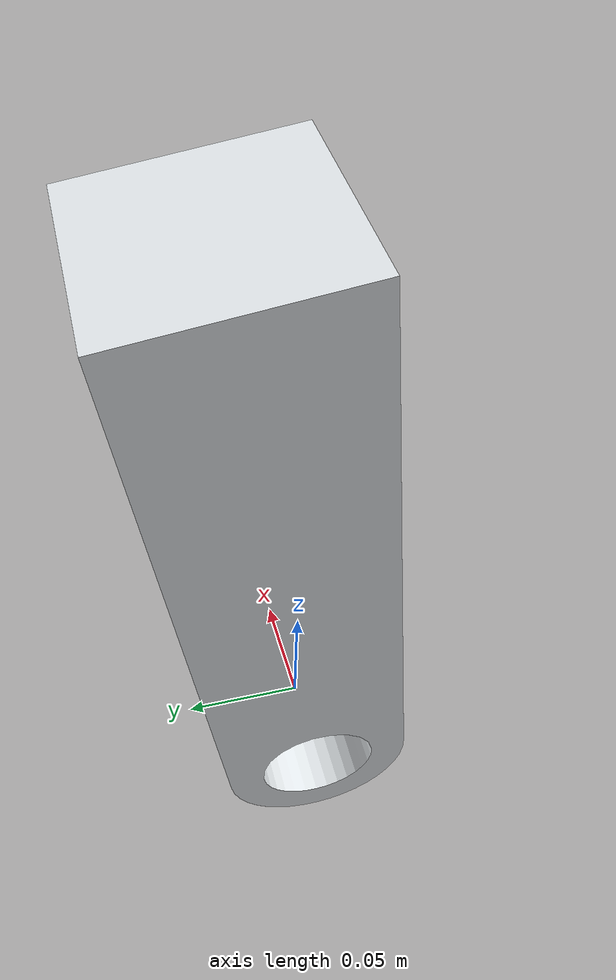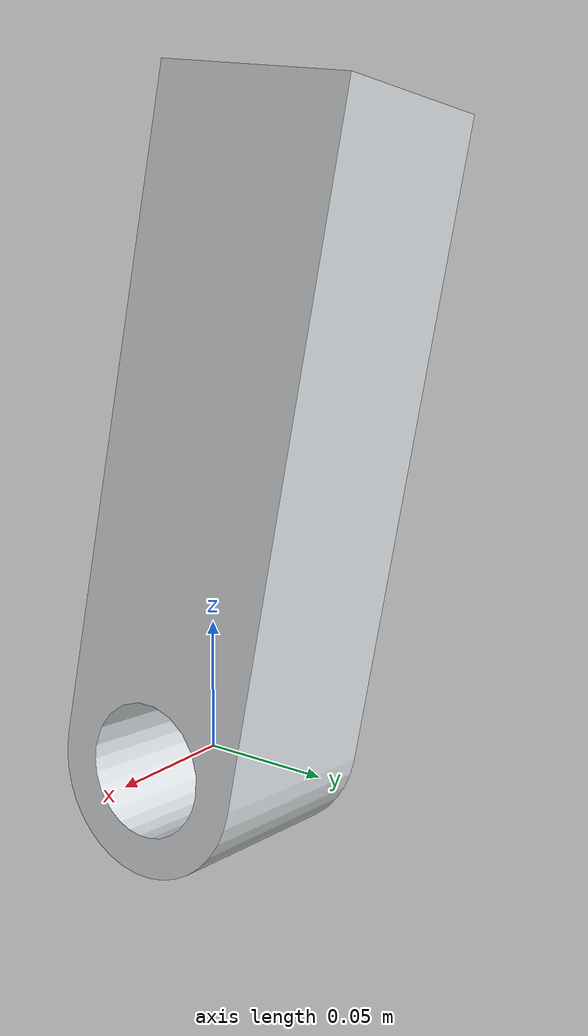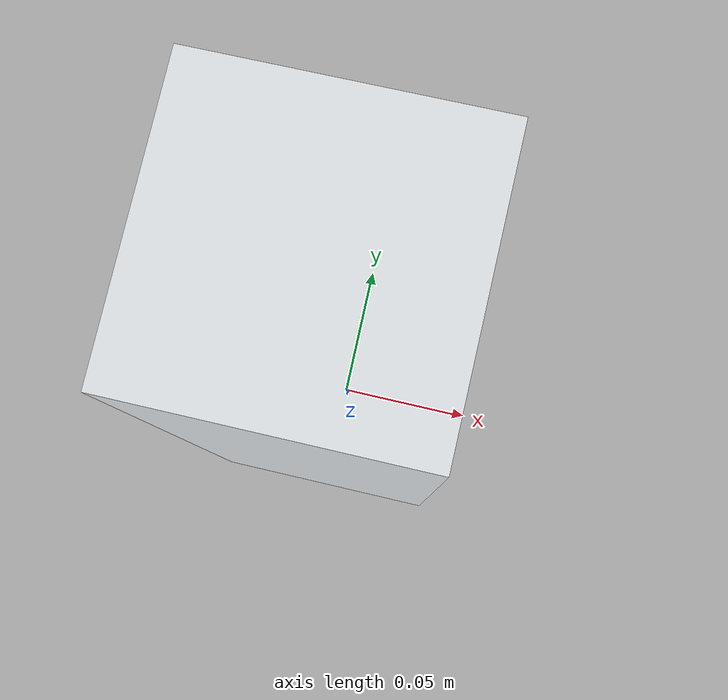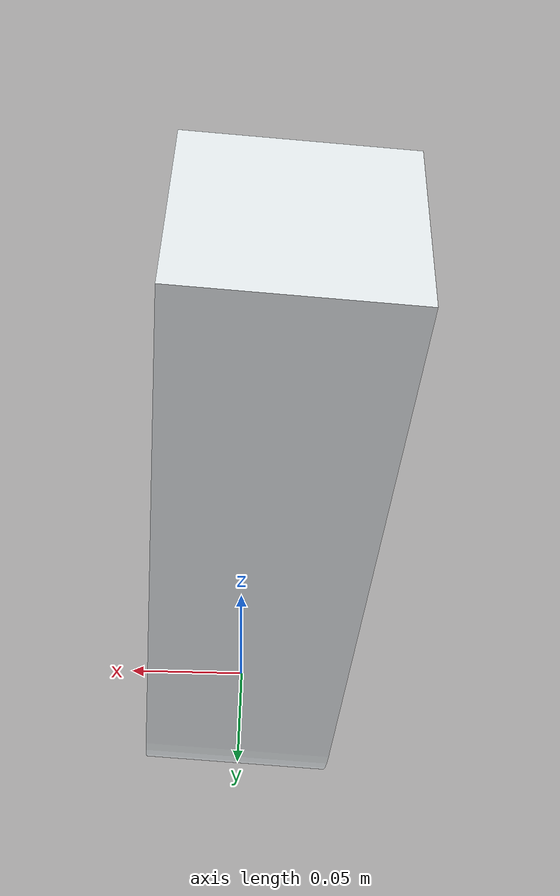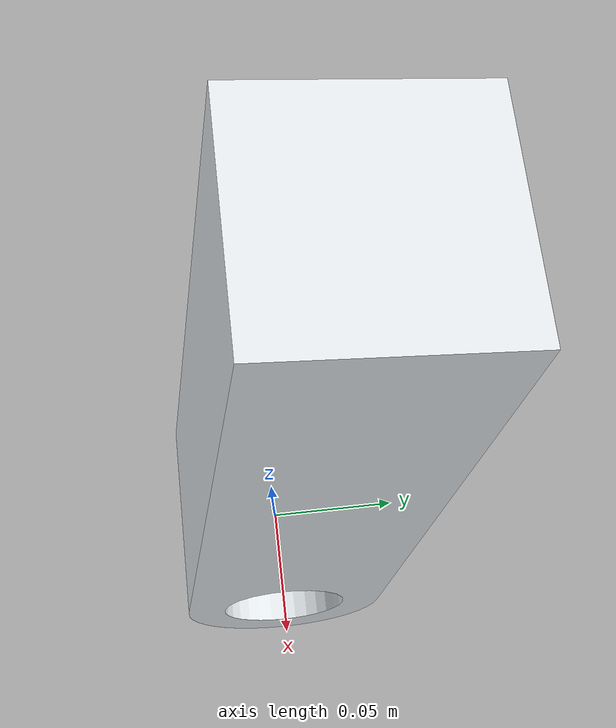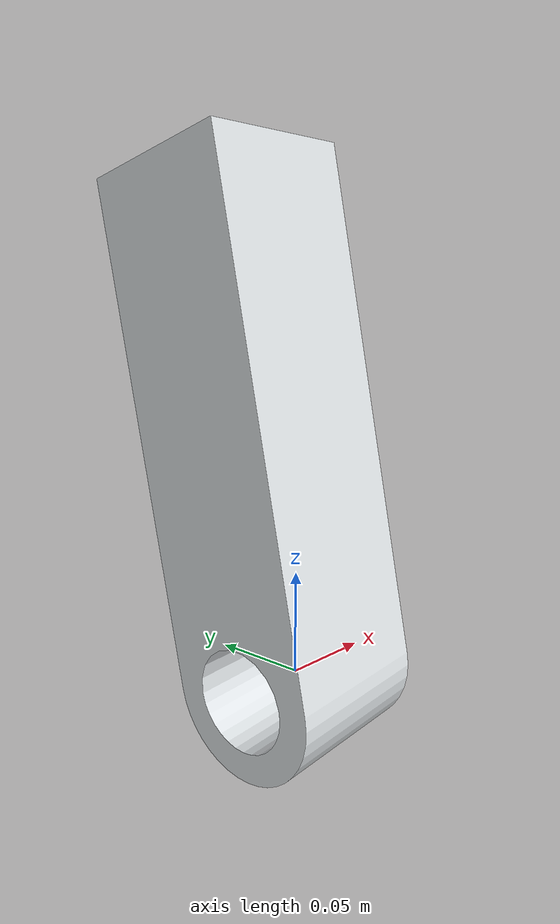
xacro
<?xml version="1.0" encoding="utf-8"?>
<robot name="sentry_pitch" xmlns:xacro="http://www.ros.org/wiki/xacro">
 <link
    name="Pitch_Link">
    <inertial>
      <origin
        xyz="0.0636983717298516 -0.0536021170514228 0.0278206209890751"
        rpy="0 0 0" />
      <mass
        value="0.792372058279168" />
      <inertia
        ixx="0.000664535673801091"
        ixy="4.62476804335301E-07"
        ixz="1.36028186071488E-05"
        iyy="0.00149259274595659"
        iyz="-3.38492271350782E-07"
        izz="0.00115988290025129" />
    </inertial>
    <visual>
      <origin
        xyz="0 0 0"
        rpy="0 0 0" />
      <geometry>
        <mesh
          filename="package://sentry_kinematics_sim/meshes/Pitch_Link.STL" />
      </geometry>
      <material
        name="">
        <color
          rgba="0.898039215686275 0.917647058823529 0.929411764705882 1" />
      </material>
    </visual>
    <collision>
      <origin
        xyz="0 0 0"
        rpy="0 0 0" />
      <geometry>
        <mesh
          filename="package://sentry_kinematics_sim/meshes/Pitch_Link.STL" />
      </geometry>
    </collision>
  </link>

       <gazebo reference="Pitch_Link">
     <material>Gazebo/Grey</material>
     <turnGravityOff>false</turnGravityOff>
 </gazebo>

</robot>
